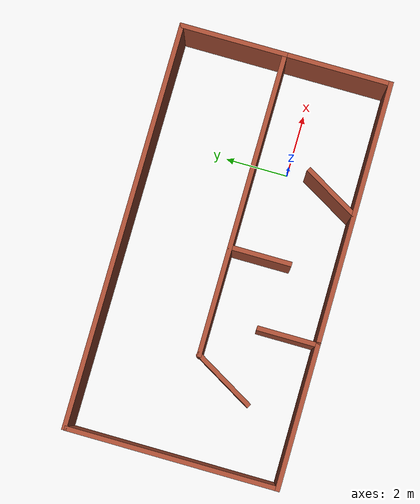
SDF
<?xml version='1.0'?>
<sdf version='1.6'>
  <model name='testing'>
    <pose frame=''>-3.15231 1.02972 0 0 -0 0</pose>
    <link name='Wall_0'>
      <collision name='Wall_0_Collision'>
        <geometry>
          <box>
            <size>9.75 0.15 2.5</size>
          </box>
        </geometry>
        <pose frame=''>0 0 1.25 0 -0 0</pose>
      </collision>
      <visual name='Wall_0_Visual'>
        <pose frame=''>0 0 1.25 0 -0 0</pose>
        <geometry>
          <box>
            <size>9.75 0.15 2.5</size>
          </box>
        </geometry>
        <material>
          <script>
            <uri>file://media/materials/scripts/gazebo.material</uri>
            <name>Gazebo/Bricks</name>
          </script>
          <ambient>1 1 1 1</ambient>
        </material>
        <meta>
          <layer>0</layer>
        </meta>
      </visual>
      <pose frame=''>1.61125 0.03498 0 0 -0 0</pose>
    </link>
    <link name='Wall_12'>
      <collision name='Wall_12_Collision'>
        <geometry>
          <box>
            <size>4.66305 0.15 2.5</size>
          </box>
        </geometry>
        <pose frame=''>0 0 1.25 0 -0 0</pose>
      </collision>
      <visual name='Wall_12_Visual'>
        <pose frame=''>0 0 1.25 0 -0 0</pose>
        <geometry>
          <box>
            <size>4.66305 0.15 2.5</size>
          </box>
        </geometry>
        <material>
          <script>
            <uri>file://media/materials/scripts/gazebo.material</uri>
            <name>Gazebo/Bricks</name>
          </script>
          <ambient>1 1 1 1</ambient>
        </material>
        <meta>
          <layer>0</layer>
        </meta>
      </visual>
      <pose frame=''>-4.17221 -3.35 0 0 -0 3.14159</pose>
    </link>
    <link name='Wall_13'>
      <collision name='Wall_13_Collision'>
        <geometry>
          <box>
            <size>6.75 0.15 2.5</size>
          </box>
        </geometry>
        <pose frame=''>0 0 1.25 0 -0 0</pose>
      </collision>
      <visual name='Wall_13_Visual'>
        <pose frame=''>0 0 1.25 0 -0 0</pose>
        <geometry>
          <box>
            <size>6.75 0.15 2.5</size>
          </box>
        </geometry>
        <material>
          <script>
            <uri>file://media/materials/scripts/gazebo.material</uri>
            <name>Gazebo/Bricks</name>
          </script>
          <ambient>1 1 1 1</ambient>
        </material>
        <meta>
          <layer>0</layer>
        </meta>
      </visual>
      <pose frame=''>-6.42874 -0.02687 0 0 -0 1.5708</pose>
    </link>
    <link name='Wall_16'>
      <collision name='Wall_16_Collision'>
        <geometry>
          <box>
            <size>3.46507 0.15 2.5</size>
          </box>
        </geometry>
        <pose frame=''>0 0 1.25 0 -0 0</pose>
      </collision>
      <visual name='Wall_16_Visual'>
        <pose frame=''>0 0 1.25 0 -0 0</pose>
        <geometry>
          <box>
            <size>3.46507 0.15 2.5</size>
          </box>
        </geometry>
        <material>
          <script>
            <uri>file://media/materials/scripts/gazebo.material</uri>
            <name>Gazebo/Bricks</name>
          </script>
          <ambient>1 1 1 1</ambient>
        </material>
        <meta>
          <layer>0</layer>
        </meta>
      </visual>
      <pose frame=''>6.42874 1.69249 0 0 -0 1.5708</pose>
    </link>
    <link name='Wall_18'>
      <collision name='Wall_18_Collision'>
        <geometry>
          <box>
            <size>13 0.15 2.5</size>
          </box>
        </geometry>
        <pose frame=''>0 0 1.25 0 -0 0</pose>
      </collision>
      <visual name='Wall_18_Visual'>
        <pose frame=''>0 0 1.25 0 -0 0</pose>
        <geometry>
          <box>
            <size>13 0.15 2.5</size>
          </box>
        </geometry>
        <material>
          <script>
            <uri>file://media/materials/scripts/gazebo.material</uri>
            <name>Gazebo/Bricks</name>
          </script>
          <ambient>1 1 1 1</ambient>
        </material>
        <meta>
          <layer>0</layer>
        </meta>
      </visual>
      <pose frame=''>0.003739 3.35 0 0 -0 3.14159</pose>
    </link>
    <link name='Wall_23'>
      <collision name='Wall_23_Collision'>
        <geometry>
          <box>
            <size>2.25 0.15 2.5</size>
          </box>
        </geometry>
        <pose frame=''>0 0 1.25 0 -0 0</pose>
      </collision>
      <visual name='Wall_23_Visual'>
        <pose frame=''>0 0 1.25 0 -0 0</pose>
        <geometry>
          <box>
            <size>2.25 0.15 2.5</size>
          </box>
        </geometry>
        <material>
          <script>
            <uri>file://media/materials/scripts/gazebo.material</uri>
            <name>Gazebo/Bricks</name>
          </script>
          <ambient>1 1 1 1</ambient>
        </material>
        <meta>
          <layer>0</layer>
        </meta>
      </visual>
      <pose frame=''>-3.71375 -0.874347 0 0 0 -2.0944</pose>
    </link>
    <link name='Wall_25'>
      <collision name='Wall_25_Collision'>
        <geometry>
          <box>
            <size>2 0.15 2.5</size>
          </box>
        </geometry>
        <pose frame=''>0 0 1.25 0 -0 0</pose>
      </collision>
      <visual name='Wall_25_Visual'>
        <pose frame=''>0 0 1.25 0 -0 0</pose>
        <geometry>
          <box>
            <size>2 0.15 2.5</size>
          </box>
        </geometry>
        <material>
          <script>
            <uri>file://media/materials/scripts/gazebo.material</uri>
            <name>Gazebo/Bricks</name>
          </script>
          <ambient>1 1 1 1</ambient>
        </material>
        <meta>
          <layer>0</layer>
        </meta>
      </visual>
      <pose frame=''>-1.92892 -2.425 0 0 -0 1.5708</pose>
    </link>
    <link name='Wall_4'>
      <collision name='Wall_4_Collision'>
        <geometry>
          <box>
            <size>3.53503 0.15 2.5</size>
          </box>
        </geometry>
        <pose frame=''>0 0 1.25 0 -0 0</pose>
      </collision>
      <visual name='Wall_4_Visual'>
        <pose frame=''>0 0 1.25 0 -0 0</pose>
        <geometry>
          <box>
            <size>3.53503 0.15 2.5</size>
          </box>
        </geometry>
        <material>
          <script>
            <uri>file://media/materials/scripts/gazebo.material</uri>
            <name>Gazebo/Bricks</name>
          </script>
          <ambient>1 1 1 1</ambient>
        </material>
        <meta>
          <layer>0</layer>
        </meta>
      </visual>
      <pose frame=''>6.42874 -1.65751 0 0 0 -1.5708</pose>
    </link>
    <link name='Wall_5'>
      <collision name='Wall_5_Collision'>
        <geometry>
          <box>
            <size>8.49443 0.15 2.5</size>
          </box>
        </geometry>
        <pose frame=''>0 0 1.25 0 -0 0</pose>
      </collision>
      <visual name='Wall_5_Visual'>
        <pose frame=''>0 0 1.25 0 -0 0</pose>
        <geometry>
          <box>
            <size>8.49443 0.15 2.5</size>
          </box>
        </geometry>
        <material>
          <script>
            <uri>file://media/materials/scripts/gazebo.material</uri>
            <name>Gazebo/Bricks</name>
          </script>
          <ambient>1 1 1 1</ambient>
        </material>
        <meta>
          <layer>0</layer>
        </meta>
      </visual>
      <pose frame=''>2.25652 -3.35 0 0 -0 3.14159</pose>
    </link>
    <link name='Wall_7'>
      <collision name='Wall_7_Collision'>
        <geometry>
          <box>
            <size>2 0.15 2.5</size>
          </box>
        </geometry>
        <pose frame=''>0 0 1.25 0 -0 0</pose>
      </collision>
      <visual name='Wall_7_Visual'>
        <pose frame=''>0 0 1.25 0 -0 0</pose>
        <geometry>
          <box>
            <size>2 0.15 2.5</size>
          </box>
        </geometry>
        <material>
          <script>
            <uri>file://media/materials/scripts/gazebo.material</uri>
            <name>Gazebo/Bricks</name>
          </script>
          <ambient>1 1 1 1</ambient>
        </material>
        <meta>
          <layer>0</layer>
        </meta>
      </visual>
      <pose frame=''>2.69567 -2.48706 0 0 -0 1.0472</pose>
    </link>
    <link name='Wall_9'>
      <collision name='Wall_9_Collision'>
        <geometry>
          <box>
            <size>2 0.15 2.5</size>
          </box>
        </geometry>
        <pose frame=''>0 0 1.25 0 -0 0</pose>
      </collision>
      <visual name='Wall_9_Visual'>
        <pose frame=''>0 0 1.25 0 -0 0</pose>
        <geometry>
          <box>
            <size>2 0.15 2.5</size>
          </box>
        </geometry>
        <material>
          <script>
            <uri>file://media/materials/scripts/gazebo.material</uri>
            <name>Gazebo/Bricks</name>
          </script>
          <ambient>1 1 1 1</ambient>
        </material>
        <meta>
          <layer>0</layer>
        </meta>
      </visual>
      <pose frame=''>0.221811 -0.925 0 0 0 -1.5708</pose>
    </link>
    <static>1</static>
  </model>
</sdf>
